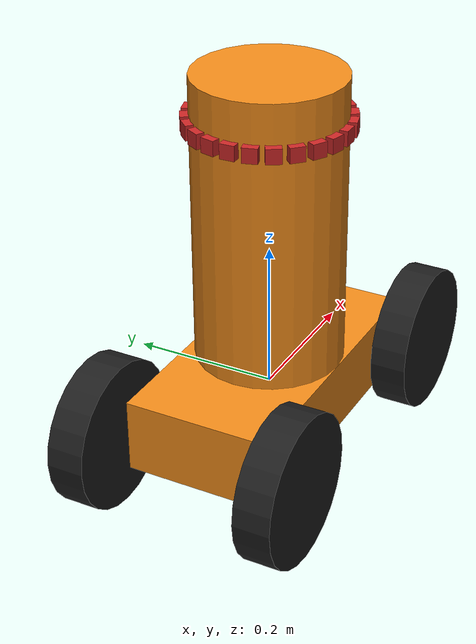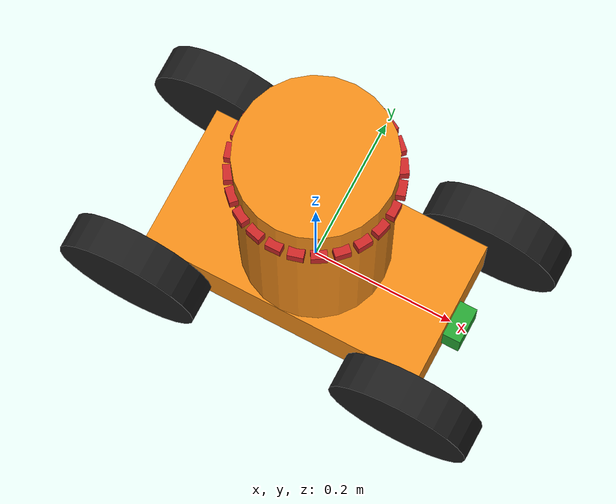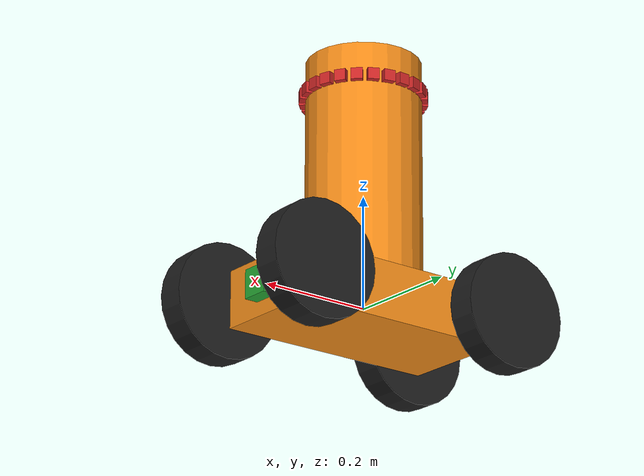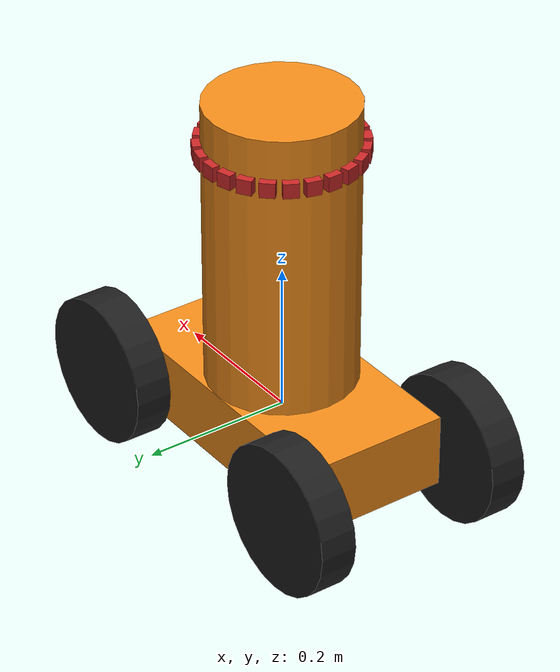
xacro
<?xml version='1.0'?>

<robot name="myrobot" xmlns:xacro="http://www.ros.org/wiki/xacro">

  <xacro:include filename="$(find mybot_description)/urdf/mybot.gazebo" />
  <xacro:include filename="$(find mybot_description)/urdf/materials.xacro" />
  <xacro:include filename="$(find mybot_description)/urdf/macros.xacro" />

  <xacro:property name="cameraSize" value="0.05"/>
  <xacro:property name="cameraMass" value="0.1"/>
  <xacro:property name="irSize" value="0.02"/>
  <xacro:property name="irMass" value="0.01"/>

  <link name='chassis'>
    <pose>0 0 0.1 0 0 0</pose>

    <inertial>
      <mass value="10.0"/>
      <origin xyz="0.0 0 0.1" rpy=" 0 0 0"/>
      <inertia
          ixx="0.5" ixy="0" ixz="0"
          iyy="1.0" iyz="0"
          izz="0.1"
      />
    </inertial>

    <collision name='collision'>
      <geometry>
        <box size=".4 .2 .1"/>
      </geometry>
    </collision>

    <visual name='chassis_visual'>
      <origin xyz="0 0 0" rpy=" 0 0 0"/>
      <geometry>
        <box size=".4 .2 .1"/>
      </geometry>
    </visual>
  </link>

  <link name="tower">
    <collision name='tower_collision'>
      <origin xyz="0 0 0.2" rpy="0 0 0" />
      <geometry>
	<cylinder radius="0.1" length="0.483" />
      </geometry>
    </collision>
    <visual name='tower_visual'>
      <origin xyz="0 0 0.2" rpy=" 0 0 0"/>
      <geometry>
	<cylinder radius="0.1" length="0.483" />
      </geometry>
    </visual>
  </link>

  <joint name="tower_joint" type="fixed">
     <child link="tower"/>
     <parent link="chassis"/>
  </joint>

  <link name="left_wheel">
    <!--origin xyz="0.1 0.13 0.1" rpy="0 1.5707 1.5707"/-->
    <collision name="collision">
      <origin xyz="0 0 0" rpy="0 1.5707 1.5707"/>
      <geometry>
        <cylinder radius="0.1" length="0.05"/>
      </geometry>
    </collision>
    <visual name="left_wheel_visual">
      <origin xyz="0 0 0" rpy="0 1.5707 1.5707"/>
      <geometry>
        <cylinder radius="0.1" length="0.05"/>
      </geometry>
    </visual>
    <inertial>
      <origin xyz="0 0 0" rpy="0 1.5707 1.5707"/>
      <mass value="5"/>
      <cylinder_inertia m="5" r="0.1" h="0.05"/>
      <inertia
        ixx="1.0" ixy="0.0" ixz="0.0"
        iyy="1.0" iyz="0.0"
        izz="1.0"/>
    </inertial>
  </link>

  <link name="right_wheel">
    <!--origin xyz="0.1 -0.13 0.1" rpy="0 1.5707 1.5707"/-->
    <collision name="collision">
      <origin xyz="0 0 0" rpy="0 1.5707 1.5707"/>
      <geometry>
        <cylinder radius="0.1" length="0.05"/>
      </geometry>
    </collision>
    <visual name="right_wheel_visual">
      <origin xyz="0 0 0" rpy="0 1.5707 1.5707"/>
      <geometry>
        <cylinder radius="0.1" length="0.05"/>
      </geometry>
    </visual>
    <inertial>
      <origin xyz="0 0 0" rpy="0 1.5707 1.5707"/>
      <mass value="5"/>
      <cylinder_inertia m="5" r="0.1" h="0.05"/>
      <inertia
        ixx="1.0" ixy="0.0" ixz="0.0"
        iyy="1.0" iyz="0.0"
        izz="1.0"/>
    </inertial>
  </link>

  <joint type="continuous" name="left_wheel_hinge">
    <origin xyz="0.2 0.13 0" rpy="0 0 0"/>
    <child link="left_wheel"/>
    <parent link="chassis"/>
    <axis xyz="0 1 0" rpy="0 0 0"/>
    <limit effort="100" velocity="100"/>
    <joint_properties damping="0.0" friction="0.0"/>
  </joint>

  <joint type="continuous" name="right_wheel_hinge">
    <origin xyz="0.2 -0.13 0" rpy="0 0 0"/>
    <child link="right_wheel"/>
    <parent link="chassis"/>
    <axis xyz="0 1 0" rpy="0 0 0"/>
    <limit effort="100" velocity="100"/>
    <joint_properties damping="0.0" friction="0.0"/>
  </joint>

    <link name="back_left_wheel">
    <!--origin xyz="0.1 0.13 0.1" rpy="0 1.5707 1.5707"/-->
    <collision name="collision">
      <origin xyz="0 0 0" rpy="0 1.5707 1.5707"/>
      <geometry>
        <cylinder radius="0.1" length="0.05"/>
      </geometry>
    </collision>
    <visual name="back_left_wheel_visual">
      <origin xyz="0 0 0" rpy="0 1.5707 1.5707"/>
      <geometry>
        <cylinder radius="0.1" length="0.05"/>
      </geometry>
    </visual>
    <inertial>
      <origin xyz="0 0 0" rpy="0 1.5707 1.5707"/>
      <mass value="5"/>
      <cylinder_inertia m="5" r="0.1" h="0.05"/>
      <inertia
        ixx="1.0" ixy="0.0" ixz="0.0"
        iyy="1.0" iyz="0.0"
        izz="1.0"/>
    </inertial>
  </link>

  <link name="back_right_wheel">
    <!--origin xyz="0.1 -0.13 0.1" rpy="0 1.5707 1.5707"/-->
    <collision name="collision">
      <origin xyz="0 0 0" rpy="0 1.5707 1.5707"/>
      <geometry>
        <cylinder radius="0.1" length="0.05"/>
      </geometry>
    </collision>
    <visual name="back_right_wheel_visual">
      <origin xyz="0 0 0" rpy="0 1.5707 1.5707"/>
      <geometry>
        <cylinder radius="0.1" length="0.05"/>
      </geometry>
    </visual>
    <inertial>
      <origin xyz="0 0 0" rpy="0 1.5707 1.5707"/>
      <mass value="5"/>
      <cylinder_inertia m="5" r="0.1" h="0.05"/>
      <inertia
        ixx="1.0" ixy="0.0" ixz="0.0"
        iyy="1.0" iyz="0.0"
        izz="1.0"/>
    </inertial>
  </link>

  <joint type="continuous" name="back_left_wheel_hinge">
    <origin xyz="-0.2 0.13 0" rpy="0 0 0"/>
    <child link="back_left_wheel"/>
    <parent link="chassis"/>
    <axis xyz="0 1 0" rpy="0 0 0"/>
    <limit effort="100" velocity="100"/>
    <joint_properties damping="0.0" friction="0.0"/>
  </joint>

  <joint type="continuous" name="back_right_wheel_hinge">
    <origin xyz="-0.2 -0.13 0" rpy="0 0 0"/>
    <child link="back_right_wheel"/>
    <parent link="chassis"/>
    <axis xyz="0 1 0" rpy="0 0 0"/>
    <limit effort="100" velocity="100"/>
    <joint_properties damping="0.0" friction="0.0"/>
  </joint>

  <link name="camera">
    <collision>
      <origin xyz="0 0 0" rpy="0 0 0"/>
      <geometry>
        <box size="${cameraSize} ${cameraSize} ${cameraSize}"/>
      </geometry>
    </collision>

    <visual>
      <origin xyz="0 0 0" rpy="0 0 0"/>
      <geometry>
        <box size="${cameraSize} ${cameraSize} ${cameraSize}"/>
      </geometry>
      <material name="green"/>
    </visual>

    <inertial>
      <mass value="${cameraMass}" />
      <origin xyz="0 0 0" rpy="0 0 0"/>
      <box_inertia m="${cameraMass}" x="${cameraSize}" y="${cameraSize}" z="${cameraSize}" />
      <inertia ixx="1e-6" ixy="0" ixz="0" iyy="1e-6" iyz="0" izz="1e-6" />
    </inertial>
  </link>

  <joint name="camera_joint" type="fixed">
    <axis xyz="0 1 0" />
    <origin xyz=".2 0 0" rpy="0 0 0"/>
    <parent link="chassis"/>
    <child link="camera"/>
  </joint>

  <link name="ir1">
    <collision>
      <origin xyz="0.0 0 0.0" rpy="0 0 0"/>
      <geometry>
        <box size="${irSize} ${irSize} ${irSize}"/>
      </geometry>
    </collision>

    <visual>
      <origin xyz="0.0 0 0.0" rpy="0 0 0"/>
      <geometry>
        <box size="${irSize} ${irSize} ${irSize}"/>
      </geometry>
    </visual>

    <inertial>
      <mass value="${irMass}" />
      <origin xyz="0.0 0 0.0" rpy="0 0 0"/>
      <box_inertia m="${irMass}" x="${irSize}" y="${irSize}" z="${irSize}" />
      <inertia ixx="1e-6" ixy="0" ixz="0" iyy="1e-6" iyz="0" izz="1e-6" />
    </inertial>
  </link>
  <joint name="ir1_joint" type="fixed">
    <origin xyz="0.1 0 0.380" rpy="0 0 0"/>
    <parent link="chassis"/>
    <child link="ir1"/>
  </joint>

  <link name="ir2">
    <collision>
      <origin xyz="0.0 0 0.0" rpy="0 0 0"/>
      <geometry>
        <box size="${irSize} ${irSize} ${irSize}"/>
      </geometry>
    </collision>

    <visual>
      <origin xyz="0.0 0 0.0" rpy="0 0 0"/>
      <geometry>
        <box size="${irSize} ${irSize} ${irSize}"/>
      </geometry>
    </visual>

    <inertial>
      <mass value="${irMass}" />
      <origin xyz="0.0 0 0.0" rpy="0 0 0"/>
      <box_inertia m="${irMass}" x="${irSize}" y="${irSize}" z="${irSize}" />
      <inertia ixx="1e-6" ixy="0" ixz="0" iyy="1e-6" iyz="0" izz="1e-6" />
    </inertial>
  </link>
  <joint name="ir2_joint" type="fixed">
    <origin xyz="0.097 -0.026 0.380" rpy="0 0 -0.26"/>
    <parent link="chassis"/>
    <child link="ir2"/>
  </joint>

   <link name="ir3">
    <collision>
      <origin xyz="0.0 0 0.0" rpy="0 0 0"/>
      <geometry>
        <box size="${irSize} ${irSize} ${irSize}"/>
      </geometry>
    </collision>

    <visual>
      <origin xyz="0.0 0 0.0" rpy="0 0 0"/>
      <geometry>
        <box size="${irSize} ${irSize} ${irSize}"/>
      </geometry>
    </visual>

    <inertial>
      <mass value="${irMass}" />
      <origin xyz="0.0 0 0.0" rpy="0 0 0"/>
      <box_inertia m="${irMass}" x="${irSize}" y="${irSize}" z="${irSize}" />
      <inertia ixx="1e-6" ixy="0" ixz="0" iyy="1e-6" iyz="0" izz="1e-6" />
    </inertial>
  </link>
  <joint name="ir3_joint" type="fixed">
    <origin xyz="0.087 -0.05 0.380" rpy="0 0 -0.52"/>
    <parent link="chassis"/>
    <child link="ir3"/>
  </joint>

  <link name="ir4">
    <collision>
      <origin xyz="0.0 0 0.0" rpy="0 0 0"/>
      <geometry>
        <box size="${irSize} ${irSize} ${irSize}"/>
      </geometry>
    </collision>

    <visual>
      <origin xyz="0.0 0 0.0" rpy="0 0 0"/>
      <geometry>
        <box size="${irSize} ${irSize} ${irSize}"/>
      </geometry>
    </visual>

    <inertial>
      <mass value="${irMass}" />
      <origin xyz="0.0 0 0.0" rpy="0 0 0"/>
      <box_inertia m="${irMass}" x="${irSize}" y="${irSize}" z="${irSize}" />
      <inertia ixx="1e-6" ixy="0" ixz="0" iyy="1e-6" iyz="0" izz="1e-6" />
    </inertial>
  </link>
  <joint name="ir4_joint" type="fixed">
    <origin xyz="0.0707 -0.0707 0.380" rpy="0 0 -0.78"/>
    <parent link="chassis"/>
    <child link="ir4"/>
  </joint>

  <link name="ir5">
    <collision>
      <origin xyz="0.0 0 0.0" rpy="0 0 0"/>
      <geometry>
        <box size="${irSize} ${irSize} ${irSize}"/>
      </geometry>
    </collision>

    <visual>
      <origin xyz="0.0 0 0.0" rpy="0 0 0"/>
      <geometry>
        <box size="${irSize} ${irSize} ${irSize}"/>
      </geometry>
    </visual>

    <inertial>
      <mass value="${irMass}" />
      <origin xyz="0.0 0 0.0" rpy="0 0 0"/>
      <box_inertia m="${irMass}" x="${irSize}" y="${irSize}" z="${irSize}" />
      <inertia ixx="1e-6" ixy="0" ixz="0" iyy="1e-6" iyz="0" izz="1e-6" />
    </inertial>
  </link>
  <joint name="ir5_joint" type="fixed">
    <origin xyz="0.05 -0.087 0.380" rpy="0 0 -1.04"/>
    <parent link="chassis"/>
    <child link="ir5"/>
  </joint>

  <link name="ir6">
    <collision>
      <origin xyz="0.0 0 0.0" rpy="0 0 0"/>
      <geometry>
        <box size="${irSize} ${irSize} ${irSize}"/>
      </geometry>
    </collision>

    <visual>
      <origin xyz="0.0 0 0.0" rpy="0 0 0"/>
      <geometry>
        <box size="${irSize} ${irSize} ${irSize}"/>
      </geometry>
    </visual>

    <inertial>
      <mass value="${irMass}" />
      <origin xyz="0.0 0 0.0" rpy="0 0 0"/>
      <box_inertia m="${irMass}" x="${irSize}" y="${irSize}" z="${irSize}" />
      <inertia ixx="1e-6" ixy="0" ixz="0" iyy="1e-6" iyz="0" izz="1e-6" />
    </inertial>
  </link>
  <joint name="ir6_joint" type="fixed">
    <origin xyz="0.026 -0.097 0.380" rpy="0 0 -1.30"/>
    <parent link="chassis"/>
    <child link="ir6"/>
  </joint>

  <link name="ir7">
    <collision>
      <origin xyz="0.0 0 0.0" rpy="0 0 0"/>
      <geometry>
        <box size="${irSize} ${irSize} ${irSize}"/>
      </geometry>
    </collision>

    <visual>
      <origin xyz="0.0 0 0.0" rpy="0 0 0"/>
      <geometry>
        <box size="${irSize} ${irSize} ${irSize}"/>
      </geometry>
    </visual>

    <inertial>
      <mass value="${irMass}" />
      <origin xyz="0.0 0 0.0" rpy="0 0 0"/>
      <box_inertia m="${irMass}" x="${irSize}" y="${irSize}" z="${irSize}" />
      <inertia ixx="1e-6" ixy="0" ixz="0" iyy="1e-6" iyz="0" izz="1e-6" />
    </inertial>
  </link>
  <joint name="ir7_joint" type="fixed">
    <origin xyz="0 -0.1 0.380" rpy="0 0 -1.56"/>
    <parent link="chassis"/>
    <child link="ir7"/>
  </joint>

  <link name="ir8">
    <collision>
      <origin xyz="0.0 0 0.0" rpy="0 0 0"/>
      <geometry>
        <box size="${irSize} ${irSize} ${irSize}"/>
      </geometry>
    </collision>

    <visual>
      <origin xyz="0.0 0 0.0" rpy="0 0 0"/>
      <geometry>
        <box size="${irSize} ${irSize} ${irSize}"/>
      </geometry>
    </visual>

    <inertial>
      <mass value="${irMass}" />
      <origin xyz="0.0 0 0.0" rpy="0 0 0"/>
      <box_inertia m="${irMass}" x="${irSize}" y="${irSize}" z="${irSize}" />
      <inertia ixx="1e-6" ixy="0" ixz="0" iyy="1e-6" iyz="0" izz="1e-6" />
    </inertial>
  </link>
  <joint name="ir8_joint" type="fixed">
    <origin xyz="-0.026 -0.097 0.380" rpy="0 0 -1.82"/>
    <parent link="chassis"/>
    <child link="ir8"/>
  </joint>

  <link name="ir9">
    <collision>
      <origin xyz="0.0 0 0.0" rpy="0 0 0"/>
      <geometry>
        <box size="${irSize} ${irSize} ${irSize}"/>
      </geometry>
    </collision>

    <visual>
      <origin xyz="0.0 0 0.0" rpy="0 0 0"/>
      <geometry>
        <box size="${irSize} ${irSize} ${irSize}"/>
      </geometry>
    </visual>

    <inertial>
      <mass value="${irMass}" />
      <origin xyz="0.0 0 0.0" rpy="0 0 0"/>
      <box_inertia m="${irMass}" x="${irSize}" y="${irSize}" z="${irSize}" />
      <inertia ixx="1e-6" ixy="0" ixz="0" iyy="1e-6" iyz="0" izz="1e-6" />
    </inertial>
  </link>
  <joint name="ir9_joint" type="fixed">
    <origin xyz="-0.05 -0.087 0.380" rpy="0 0 -2.08"/>
    <parent link="chassis"/>
    <child link="ir9"/>
  </joint>

  <link name="ir10">
    <collision>
      <origin xyz="0.0 0 0.0" rpy="0 0 0"/>
      <geometry>
        <box size="${irSize} ${irSize} ${irSize}"/>
      </geometry>
    </collision>

    <visual>
      <origin xyz="0.0 0 0.0" rpy="0 0 0"/>
      <geometry>
        <box size="${irSize} ${irSize} ${irSize}"/>
      </geometry>
    </visual>

    <inertial>
      <mass value="${irMass}" />
      <origin xyz="0.0 0 0.0" rpy="0 0 0"/>
      <box_inertia m="${irMass}" x="${irSize}" y="${irSize}" z="${irSize}" />
      <inertia ixx="1e-6" ixy="0" ixz="0" iyy="1e-6" iyz="0" izz="1e-6" />
    </inertial>
  </link>
  <joint name="ir10_joint" type="fixed">
    <origin xyz="-0.0707 -0.0707 0.380" rpy="0 0 -2.34"/>
    <parent link="chassis"/>
    <child link="ir10"/>
  </joint>

  <link name="ir11">
    <collision>
      <origin xyz="0.0 0 0.0" rpy="0 0 0"/>
      <geometry>
        <box size="${irSize} ${irSize} ${irSize}"/>
      </geometry>
    </collision>

    <visual>
      <origin xyz="0.0 0 0.0" rpy="0 0 0"/>
      <geometry>
        <box size="${irSize} ${irSize} ${irSize}"/>
      </geometry>
    </visual>

    <inertial>
      <mass value="${irMass}" />
      <origin xyz="0.0 0 0.0" rpy="0 0 0"/>
      <box_inertia m="${irMass}" x="${irSize}" y="${irSize}" z="${irSize}" />
      <inertia ixx="1e-6" ixy="0" ixz="0" iyy="1e-6" iyz="0" izz="1e-6" />
    </inertial>
  </link>
  <joint name="ir11_joint" type="fixed">
    <origin xyz="-0.087 -0.05 0.380" rpy="0 0 -2.60"/>
    <parent link="chassis"/>
    <child link="ir11"/>
  </joint>

  <link name="ir12">
    <collision>
      <origin xyz="0.0 0 0.0" rpy="0 0 0"/>
      <geometry>
        <box size="${irSize} ${irSize} ${irSize}"/>
      </geometry>
    </collision>

    <visual>
      <origin xyz="0.0 0 0.0" rpy="0 0 0"/>
      <geometry>
        <box size="${irSize} ${irSize} ${irSize}"/>
      </geometry>
    </visual>

    <inertial>
      <mass value="${irMass}" />
      <origin xyz="0.0 0 0.0" rpy="0 0 0"/>
      <box_inertia m="${irMass}" x="${irSize}" y="${irSize}" z="${irSize}" />
      <inertia ixx="1e-6" ixy="0" ixz="0" iyy="1e-6" iyz="0" izz="1e-6" />
    </inertial>
  </link>
  <joint name="ir12_joint" type="fixed">
    <origin xyz="-0.097 -0.026 0.380" rpy="0 0 -2.86"/>
    <parent link="chassis"/>
    <child link="ir12"/>
  </joint>

  <link name="ir13">
    <collision>
      <origin xyz="0.0 0 0.0" rpy="0 0 0"/>
      <geometry>
        <box size="${irSize} ${irSize} ${irSize}"/>
      </geometry>
    </collision>

    <visual>
      <origin xyz="0.0 0 0.0" rpy="0 0 0"/>
      <geometry>
        <box size="${irSize} ${irSize} ${irSize}"/>
      </geometry>
    </visual>

    <inertial>
      <mass value="${irMass}" />
      <origin xyz="0.0 0 0.0" rpy="0 0 0"/>
      <box_inertia m="${irMass}" x="${irSize}" y="${irSize}" z="${irSize}" />
      <inertia ixx="1e-6" ixy="0" ixz="0" iyy="1e-6" iyz="0" izz="1e-6" />
    </inertial>
  </link>
  <joint name="ir13_joint" type="fixed">
    <origin xyz="-0.1 0 0.380" rpy="0 0 -3.12"/>
    <parent link="chassis"/>
    <child link="ir13"/>
  </joint>

  <link name="ir14">
    <collision>
      <origin xyz="0.0 0 0.0" rpy="0 0 0"/>
      <geometry>
        <box size="${irSize} ${irSize} ${irSize}"/>
      </geometry>
    </collision>

    <visual>
      <origin xyz="0.0 0 0.0" rpy="0 0 0"/>
      <geometry>
        <box size="${irSize} ${irSize} ${irSize}"/>
      </geometry>
    </visual>

    <inertial>
      <mass value="${irMass}" />
      <origin xyz="0.0 0 0.0" rpy="0 0 0"/>
      <box_inertia m="${irMass}" x="${irSize}" y="${irSize}" z="${irSize}" />
      <inertia ixx="1e-6" ixy="0" ixz="0" iyy="1e-6" iyz="0" izz="1e-6" />
    </inertial>
  </link>
  <joint name="ir14_joint" type="fixed">
    <origin xyz="-0.097 0.026 0.380" rpy="0 0 -3.38"/>
    <parent link="chassis"/>
    <child link="ir14"/>
  </joint>

   <link name="ir15">
    <collision>
      <origin xyz="0.0 0 0.0" rpy="0 0 0"/>
      <geometry>
        <box size="${irSize} ${irSize} ${irSize}"/>
      </geometry>
    </collision>

    <visual>
      <origin xyz="0.0 0 0.0" rpy="0 0 0"/>
      <geometry>
        <box size="${irSize} ${irSize} ${irSize}"/>
      </geometry>
    </visual>

    <inertial>
      <mass value="${irMass}" />
      <origin xyz="0.0 0 0.0" rpy="0 0 0"/>
      <box_inertia m="${irMass}" x="${irSize}" y="${irSize}" z="${irSize}" />
      <inertia ixx="1e-6" ixy="0" ixz="0" iyy="1e-6" iyz="0" izz="1e-6" />
    </inertial>
  </link>
  <joint name="ir15_joint" type="fixed">
    <origin xyz="-0.087 0.05 0.380" rpy="0 0 -3.64"/>
    <parent link="chassis"/>
    <child link="ir15"/>
  </joint>

  <link name="ir16">
    <collision>
      <origin xyz="0.0 0 0.0" rpy="0 0 0"/>
      <geometry>
        <box size="${irSize} ${irSize} ${irSize}"/>
      </geometry>
    </collision>

    <visual>
      <origin xyz="0.0 0 0.0" rpy="0 0 0"/>
      <geometry>
        <box size="${irSize} ${irSize} ${irSize}"/>
      </geometry>
    </visual>

    <inertial>
      <mass value="${irMass}" />
      <origin xyz="0.0 0 0.0" rpy="0 0 0"/>
      <box_inertia m="${irMass}" x="${irSize}" y="${irSize}" z="${irSize}" />
      <inertia ixx="1e-6" ixy="0" ixz="0" iyy="1e-6" iyz="0" izz="1e-6" />
    </inertial>
  </link>
  <joint name="ir16_joint" type="fixed">
    <origin xyz="-0.0707 0.0707 0.380" rpy="0 0 -3.90"/>
    <parent link="chassis"/>
    <child link="ir16"/>
  </joint>

  <link name="ir17">
    <collision>
      <origin xyz="0.0 0 0.0" rpy="0 0 0"/>
      <geometry>
        <box size="${irSize} ${irSize} ${irSize}"/>
      </geometry>
    </collision>

    <visual>
      <origin xyz="0.0 0 0.0" rpy="0 0 0"/>
      <geometry>
        <box size="${irSize} ${irSize} ${irSize}"/>
      </geometry>
    </visual>

    <inertial>
      <mass value="${irMass}" />
      <origin xyz="0.0 0 0.0" rpy="0 0 0"/>
      <box_inertia m="${irMass}" x="${irSize}" y="${irSize}" z="${irSize}" />
      <inertia ixx="1e-6" ixy="0" ixz="0" iyy="1e-6" iyz="0" izz="1e-6" />
    </inertial>
  </link>
  <joint name="ir17_joint" type="fixed">
    <origin xyz="-0.05 0.087 0.380" rpy="0 0 -4.16"/>
    <parent link="chassis"/>
    <child link="ir17"/>
  </joint>

  <link name="ir18">
    <collision>
      <origin xyz="0.0 0 0.0" rpy="0 0 0"/>
      <geometry>
        <box size="${irSize} ${irSize} ${irSize}"/>
      </geometry>
    </collision>

    <visual>
      <origin xyz="0.0 0 0.0" rpy="0 0 0"/>
      <geometry>
        <box size="${irSize} ${irSize} ${irSize}"/>
      </geometry>
    </visual>

    <inertial>
      <mass value="${irMass}" />
      <origin xyz="0.0 0 0.0" rpy="0 0 0"/>
      <box_inertia m="${irMass}" x="${irSize}" y="${irSize}" z="${irSize}" />
      <inertia ixx="1e-6" ixy="0" ixz="0" iyy="1e-6" iyz="0" izz="1e-6" />
    </inertial>
  </link>
  <joint name="ir18_joint" type="fixed">
    <origin xyz="-0.026 0.097 0.380" rpy="0 0 -4.42"/>
    <parent link="chassis"/>
    <child link="ir18"/>
  </joint>

  <link name="ir19">
    <collision>
      <origin xyz="0.0 0 0.0" rpy="0 0 0"/>
      <geometry>
        <box size="${irSize} ${irSize} ${irSize}"/>
      </geometry>
    </collision>

    <visual>
      <origin xyz="0.0 0 0.0" rpy="0 0 0"/>
      <geometry>
        <box size="${irSize} ${irSize} ${irSize}"/>
      </geometry>
    </visual>

    <inertial>
      <mass value="${irMass}" />
      <origin xyz="0.0 0 0.0" rpy="0 0 0"/>
      <box_inertia m="${irMass}" x="${irSize}" y="${irSize}" z="${irSize}" />
      <inertia ixx="1e-6" ixy="0" ixz="0" iyy="1e-6" iyz="0" izz="1e-6" />
    </inertial>
  </link>
  <joint name="ir19_joint" type="fixed">
    <origin xyz="0 0.1 0.380" rpy="0 0 -4.68"/>
    <parent link="chassis"/>
    <child link="ir19"/>
  </joint>

  <link name="ir20">
    <collision>
      <origin xyz="0.0 0 0.0" rpy="0 0 0"/>
      <geometry>
        <box size="${irSize} ${irSize} ${irSize}"/>
      </geometry>
    </collision>

    <visual>
      <origin xyz="0.0 0 0.0" rpy="0 0 0"/>
      <geometry>
        <box size="${irSize} ${irSize} ${irSize}"/>
      </geometry>
    </visual>

    <inertial>
      <mass value="${irMass}" />
      <origin xyz="0.0 0 0.0" rpy="0 0 0"/>
      <box_inertia m="${irMass}" x="${irSize}" y="${irSize}" z="${irSize}" />
      <inertia ixx="1e-6" ixy="0" ixz="0" iyy="1e-6" iyz="0" izz="1e-6" />
    </inertial>
  </link>
  <joint name="ir20_joint" type="fixed">
    <origin xyz="0.026 0.097 0.380" rpy="0 0 -4.94"/>
    <parent link="chassis"/>
    <child link="ir20"/>
  </joint>

  <link name="ir21">
    <collision>
      <origin xyz="0.0 0 0.0" rpy="0 0 0"/>
      <geometry>
        <box size="${irSize} ${irSize} ${irSize}"/>
      </geometry>
    </collision>

    <visual>
      <origin xyz="0.0 0 0.0" rpy="0 0 0"/>
      <geometry>
        <box size="${irSize} ${irSize} ${irSize}"/>
      </geometry>
    </visual>

    <inertial>
      <mass value="${irMass}" />
      <origin xyz="0.0 0 0.0" rpy="0 0 0"/>
      <box_inertia m="${irMass}" x="${irSize}" y="${irSize}" z="${irSize}" />
      <inertia ixx="1e-6" ixy="0" ixz="0" iyy="1e-6" iyz="0" izz="1e-6" />
    </inertial>
  </link>
  <joint name="ir21_joint" type="fixed">
    <origin xyz="0.05 0.087 0.380" rpy="0 0 -5.20"/>
    <parent link="chassis"/>
    <child link="ir21"/>
  </joint>

  <link name="ir22">
    <collision>
      <origin xyz="0.0 0 0.0" rpy="0 0 0"/>
      <geometry>
        <box size="${irSize} ${irSize} ${irSize}"/>
      </geometry>
    </collision>

    <visual>
      <origin xyz="0.0 0 0.0" rpy="0 0 0"/>
      <geometry>
        <box size="${irSize} ${irSize} ${irSize}"/>
      </geometry>
    </visual>

    <inertial>
      <mass value="${irMass}" />
      <origin xyz="0.0 0 0.0" rpy="0 0 0"/>
      <box_inertia m="${irMass}" x="${irSize}" y="${irSize}" z="${irSize}" />
      <inertia ixx="1e-6" ixy="0" ixz="0" iyy="1e-6" iyz="0" izz="1e-6" />
    </inertial>
  </link>
  <joint name="ir22_joint" type="fixed">
    <origin xyz="0.0707 0.0707 0.380" rpy="0 0 -5.46"/>
    <parent link="chassis"/>
    <child link="ir22"/>
  </joint>

  <link name="ir23">
    <collision>
      <origin xyz="0.0 0 0.0" rpy="0 0 0"/>
      <geometry>
        <box size="${irSize} ${irSize} ${irSize}"/>
      </geometry>
    </collision>

    <visual>
      <origin xyz="0.0 0 0.0" rpy="0 0 0"/>
      <geometry>
        <box size="${irSize} ${irSize} ${irSize}"/>
      </geometry>
    </visual>

    <inertial>
      <mass value="${irMass}" />
      <origin xyz="0.0 0 0.0" rpy="0 0 0"/>
      <box_inertia m="${irMass}" x="${irSize}" y="${irSize}" z="${irSize}" />
      <inertia ixx="1e-6" ixy="0" ixz="0" iyy="1e-6" iyz="0" izz="1e-6" />
    </inertial>
  </link>
  <joint name="ir23_joint" type="fixed">
    <origin xyz="0.087 0.05 0.380" rpy="0 0 -5.72"/>
    <parent link="chassis"/>
    <child link="ir23"/>
  </joint>

  <link name="ir24">
    <collision>
      <origin xyz="0.0 0 0.0" rpy="0 0 0"/>
      <geometry>
        <box size="${irSize} ${irSize} ${irSize}"/>
      </geometry>
    </collision>

    <visual>
      <origin xyz="0.0 0 0.0" rpy="0 0 0"/>
      <geometry>
        <box size="${irSize} ${irSize} ${irSize}"/>
      </geometry>
    </visual>

    <inertial>
      <mass value="${irMass}" />
      <origin xyz="0.0 0 0.0" rpy="0 0 0"/>
      <box_inertia m="${irMass}" x="${irSize}" y="${irSize}" z="${irSize}" />
      <inertia ixx="1e-6" ixy="0" ixz="0" iyy="1e-6" iyz="0" izz="1e-6" />
    </inertial>
  </link>
  <joint name="ir24_joint" type="fixed">
    <origin xyz="0.097 0.026 0.380" rpy="0 0 -5.98"/>
    <parent link="chassis"/>
    <child link="ir24"/>
  </joint>

</robot>
